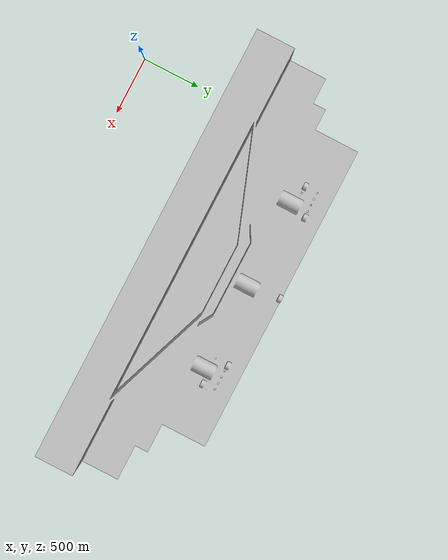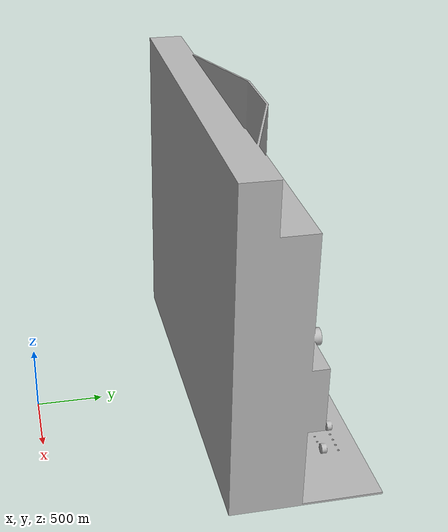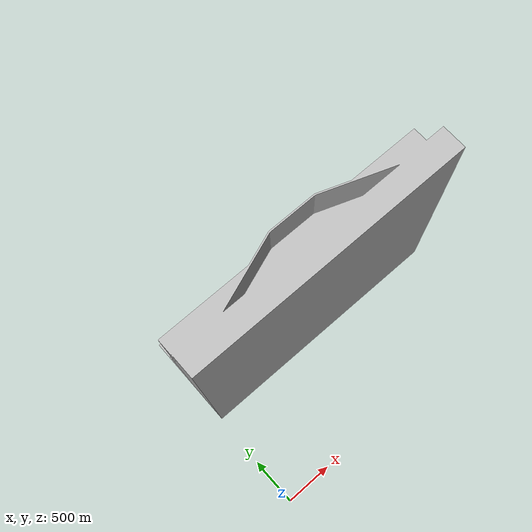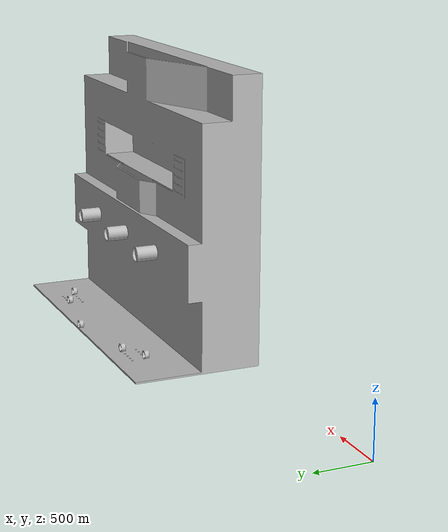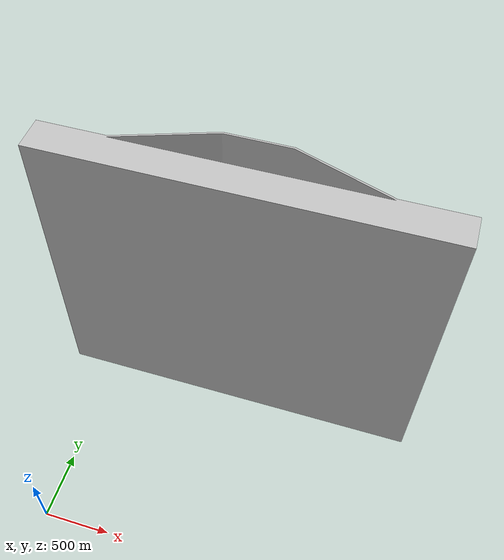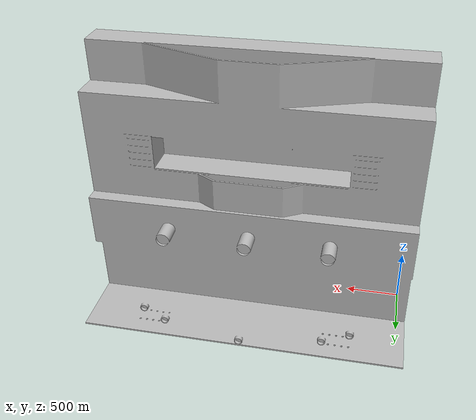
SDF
<?xml version="1.0" ?>
<sdf version="1.9">
  <world name="default">

    <!-- Environment mesh -->
    <model name="my_environment">
      <static>true</static>
      <link name="env_link">
        <visual name="env_visual">
          <geometry>
            <mesh>
              <!-- Absolute path to your environment mesh -->
              <uri>file:///home/mj/Desktop/IDC-ROBOCON/IDC-Robocon/gazebo/meshes/environment.dae</uri>
            </mesh>
          </geometry>
        </visual>
        <collision name="env_collision">
          <geometry>
            <mesh>
              <uri>file:///home/mj/Desktop/IDC-ROBOCON/IDC-Robocon/gazebo/meshes/environment.dae</uri>
            </mesh>
          </geometry>
        </collision>
      </link>
    </model>

    <!-- Robot from URDF -->

  </world>
</sdf>
